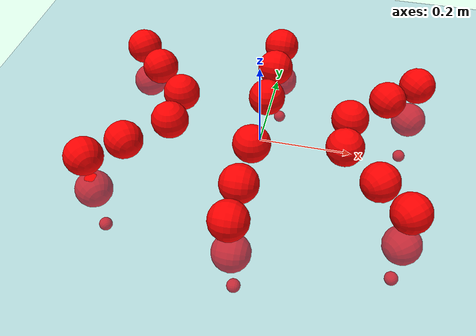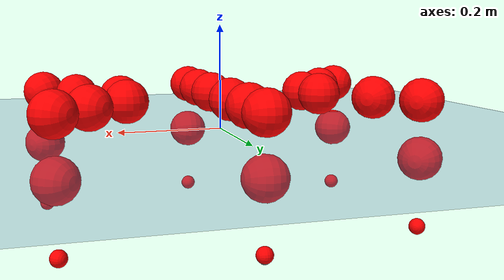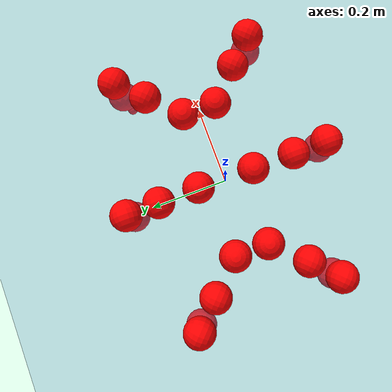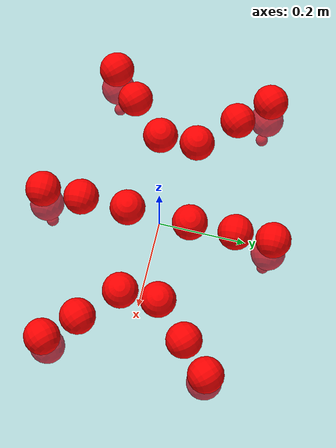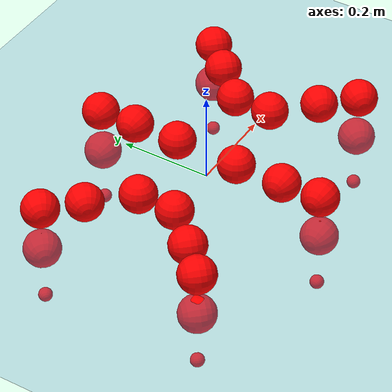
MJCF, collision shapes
<mujoco model="Golem">
  <compiler angle="radian" assetdir="assets" balanceinertia="true" inertiafromgeom="false"/>

  <option timestep="0.005" density="1.2" viscosity="2e-05"/>

  <size nkey="1"/>

  <visual>
    <quality shadowsize="8192"/>
    <map shadowclip="0.5"/>
  </visual>

  <default>
    <default class="/">
      <joint armature="0.01" damping="0.01" frictionloss="0.01"/>
      <geom contype="0" conaffinity="0" group="1" solref="-1000 -80"/>
      <site size="0.01 0.005 0.005" group="5"/>
      <general forcelimited="true" biastype="affine" gainprm="25" biasprm="0 -25 -0.5"/>
      <default class="visual">
        <geom type="mesh" group="2"/>
      </default>
      <default class="collision">
        <geom group="3"/>
      </default>
      <default class="foot">
        <geom size="0.01 0 0" condim="6" group="4" priority="1" solimp="0.015 1 0.01"/>
      </default>
      <default class="reward_collision_sphere">
        <geom group="5" rgba="1 0 0 1"/>
      </default>
    </default>
  </default>

  <asset>
    <texture type="skybox" colorspace="auto" name="//unnamed_texture_0" builtin="gradient" rgb1="0.95 0.95 0.95" rgb2="0.95 0.95 0.95" width="100" height="600"/>
    <texture type="2d" colorspace="auto" name="texplane" builtin="checker" rgb1="0.345 0.575 0.748" rgb2="0.345 0.575 0.748" markrgb="1 1 1" width="512" height="512"/>
    <material name="MatPlane" class="/" texture="texplane" texuniform="true" texrepeat="2 2" specular="0.9"/>
    <mesh name="body" class="/" file="body.stl" scale="0.001 0.001 0.001"/>
    <mesh name="coxa" class="/" file="coxa.stl" scale="0.001 0.001 0.001"/>
    <mesh name="femur" class="/" file="femur.stl" scale="0.001 0.001 0.001"/>
    <mesh name="tibia" class="/" file="tibia.stl" scale="0.001 0.001 0.001"/>
    <mesh name="tarsus" class="/" file="tarsus.stl" scale="0.001 0.001 0.001"/>
  </asset>

  <worldbody>
    <geom name="floor" class="/" size="100 100 0.125" type="plane" group="0" material="MatPlane"/>
    <light name="toplight_shadow" class="/" pos="0 0 5" dir="0.0990148 0.0990148 -0.990148" type="directional" ambient="0.04 0.04 0.04" diffuse="0.55 0.55 0.55" specular="0.12 0.12 0.12"/>
    <light name="toplight_fill" class="/" pos="0 0 5" dir="0.0990148 0.0990148 -0.990148" type="directional" castshadow="false" ambient="0.04 0.04 0.04" diffuse="0.3 0.3 0.3" specular="0.08 0.08 0.08"/>
    <body name="trunk" pos="7.02446e-05 -3.62374e-05 0.000806456" quat="1 0.000109889 -5.91725e-06 3.4363e-05">
      <inertial pos="-0.00018625 0.000615854 -0.00470171" quat="0.999968 -0.00514982 0.00536303 0.00287587" mass="3.81369" diaginertia="0.0253757 0.00358382 0.0103073"/>
      <joint name="//unnamed_joint_0" type="free"/>
      <geom name="//unnamed_geom_1" class="/" pos="0 0 0.064299" quat="1 0 0 0" type="mesh" rgba="0.9 0.9 0.9 1" mesh="body"/>
      <site name="imu" class="/" pos="0.151431 0.00449792 0.104997" size="0.0100676"/>
      <camera name="track" class="/" pos="0 -1.62926 0" quat="0.707107 0.707107 0 0" mode="trackcom"/>
      <camera name="ego_camera" class="/" pos="0.156129 0 0.100467" quat="-0.5 -0.5 0.5 0.5"/>
      <body name="coxa_RR" pos="-0.213199 -0.0670429 0.0631962" quat="0.38268 3.90091e-05 -2.28255e-05 -0.923881">
        <inertial pos="0.000574369 0.000142034 0.00117195" quat="0.999999 0.000937301 -0.00120509 -0.000233584" mass="0.202846" diaginertia="0.025213 0.00357584 0.0101763"/>
        <joint name="coxa_joint_RR" class="/" pos="0 0 0" axis="-0.00113863 0.00492962 -0.999987" range="-3.11959 3.16971" armature="0.0105011" damping="0.00749315" frictionloss="0.0103806"/>
        <geom name="//unnamed_geom_2" class="/" type="mesh" rgba="0.2 0.2 0.2 1" mesh="coxa"/>
        <geom name="//unnamed_geom_3" class="reward_collision_sphere" size="0.0402706" pos="-0.0360298 0 0"/>
        <body name="femur_RR" pos="0.0709922 0.00224171 0.00102428" quat="0.499979 -0.499888 0.499957 0.500176">
          <inertial pos="0.00108112 0.00143965 0.00198706" quat="1 -0.000194039 0.000253604 9.88607e-05" mass="0.204179" diaginertia="0.0250258 0.00354025 0.0104091"/>
          <joint name="femur_joint_RR" class="/" pos="0 0 0" axis="-0.00213899 -0.00220054 -0.999995" range="-3.13772 3.13967" armature="0.00964177" damping="0.00231877" frictionloss="0.0110919"/>
          <geom name="//unnamed_geom_4" class="/" type="mesh" rgba="0.9 0.9 0.9 1" mesh="femur"/>
          <geom name="//unnamed_geom_5" class="reward_collision_sphere" size="0.0402706"/>
          <body name="tibia_RR" pos="5.01851e-06 -0.086628 -0.00181727" quat="0.000251548 1 -0.000129843 -0.000100816">
            <inertial pos="-0.000624407 -0.00192225 0.000252581" quat="0.999996 -0.00135949 0.00115987 0.00198496" mass="0.202152" diaginertia="0.0251494 0.00358269 0.0102587"/>
            <joint name="tibia_joint_RR" class="/" pos="0 0 0" axis="0.000617017 -0.000941888 0.999999" range="-3.14034 3.14002" armature="0.010379" damping="0.0118033" frictionloss="0.0102425"/>
            <geom name="//unnamed_geom_6" class="/" type="mesh" rgba="0.2 0.2 0.2 1" mesh="tibia"/>
            <geom name="//unnamed_geom_7" class="reward_collision_sphere" size="0.0402706"/>
            <body name="tarsus_RR" pos="0.103673 0.000597342 -5.38725e-05" quat="1 8.05318e-05 -0.000284019 -9.52358e-05">
              <inertial pos="0.0730288 0.000973874 -0.000305593" quat="0.498157 0.502371 0.5007 0.498761" mass="0.205562" diaginertia="0.0255233 0.00362521 0.0102951"/>
              <joint name="tarsus_joint_RR" class="/" pos="0 0 0" axis="0.00374883 -0.000619823 0.999993" range="-3.17849 3.1801" armature="0.010249" damping="0" frictionloss="0.00993869"/>
              <geom name="//unnamed_geom_8" class="/" type="mesh" rgba="0.9 0.9 0.9 1" mesh="tarsus"/>
              <geom name="foot_1" class="foot" size="0.0100083" pos="0.134511 0 0" quat="0 -0.707107 0 0.707107"/>
              <geom name="//unnamed_geom_10" class="reward_collision_sphere" size="0.0402706"/>
              <geom name="//unnamed_geom_11" class="reward_collision_sphere" size="0.0151015" pos="0.129107 0 0"/>
              <site name="foot_1" class="foot" pos="0.134511 0 0" quat="0 -0.707107 0 0.707107" size="0.0100676"/>
            </body>
          </body>
        </body>
      </body>
      <body name="coxa_RM" pos="-0.00175864 -0.109358 0.0632219" quat="0.707094 0.000145983 -0.000467149 -0.707119">
        <inertial pos="0.000564086 0.000654001 0.000360663" quat="0.999957 0.00177875 0.00882129 0.00204482" mass="0.207015" diaginertia="0.0250471 0.00358864 0.0103734"/>
        <joint name="coxa_joint_RM" class="/" pos="0 0 0" axis="-0.00436006 -0.000460165 -0.99999" range="-3.13766 3.1432" armature="0.0101213" damping="0.0107986" frictionloss="0.00981741"/>
        <geom name="//unnamed_geom_12" class="/" type="mesh" rgba="0.2 0.2 0.2 1" mesh="coxa"/>
        <geom name="//unnamed_geom_13" class="reward_collision_sphere" size="0.0402706" pos="-0.0360298 0 0"/>
        <body name="femur_RM" pos="0.0716313 -0.000439753 -0.000979651" quat="0.499569 -0.499737 0.500431 0.500263">
          <inertial pos="-0.00167402 0.000533703 -0.00203585" quat="0.999996 -1.96807e-05 -0.000881679 0.0025349" mass="0.206571" diaginertia="0.0248266 0.00358196 0.0101148"/>
          <joint name="femur_joint_RM" class="/" pos="0 0 0" axis="-0.00295946 0.000776292 -0.999995" range="-3.14909 3.16948" armature="0.00949399" damping="0.00578658" frictionloss="0.00942382"/>
          <geom name="//unnamed_geom_14" class="/" type="mesh" rgba="0.9 0.9 0.9 1" mesh="femur"/>
          <geom name="//unnamed_geom_15" class="reward_collision_sphere" size="0.0402706"/>
          <body name="tibia_RM" pos="-0.000165415 -0.0882952 0.00164787" quat="-0.00040426 1 -0.000115231 -2.36166e-05">
            <inertial pos="0.000572243 -0.00069043 -0.000455118" quat="1 9.41451e-05 3.95972e-05 -9.24438e-05" mass="0.2026" diaginertia="0.0246652 0.00351683 0.010171"/>
            <joint name="tibia_joint_RM" class="/" pos="0 0 0" axis="-0.0069038 -0.000808234 0.999976" range="-3.15936 3.11679" armature="0.0099349" damping="0" frictionloss="0.00958148"/>
            <geom name="//unnamed_geom_16" class="/" type="mesh" rgba="0.2 0.2 0.2 1" mesh="tibia"/>
            <geom name="//unnamed_geom_17" class="reward_collision_sphere" size="0.0402706"/>
            <body name="tarsus_RM" pos="0.104008 0.00130758 -0.00114047" quat="1 -0.000169557 -5.05506e-05 -5.15194e-05">
              <inertial pos="0.0728695 -1.11346e-05 0.000181257" quat="0.499828 0.49981 0.498875 0.501484" mass="0.201573" diaginertia="0.0245876 0.00354376 0.00987623"/>
              <joint name="tarsus_joint_RM" class="/" pos="0 0 0" axis="-0.00337627 0.00149669 0.999993" range="-3.16262 3.10326" armature="0.0101027" damping="0.00162685" frictionloss="0.0103013"/>
              <geom name="//unnamed_geom_18" class="/" type="mesh" rgba="0.9 0.9 0.9 1" mesh="tarsus"/>
              <geom name="foot_2" class="foot" size="0.00977666" pos="0.134511 0 0" quat="0 -0.707107 0 0.707107"/>
              <geom name="//unnamed_geom_20" class="reward_collision_sphere" size="0.0402706"/>
              <geom name="//unnamed_geom_21" class="reward_collision_sphere" size="0.0151015" pos="0.129107 0 0"/>
              <site name="foot_2" class="foot" pos="0.134511 0 0" quat="0 -0.707107 0 0.707107" size="0.0100676"/>
            </body>
          </body>
        </body>
      </body>
      <body name="coxa_RF" pos="0.212403 -0.0683996 0.0631521" quat="0.923727 -0.000216695 9.2886e-05 -0.383052">
        <inertial pos="-0.000910711 -0.00221228 0.000317134" quat="0.999993 -0.00209558 -0.00266321 -0.00124539" mass="0.204095" diaginertia="0.0250742 0.00356086 0.0101478"/>
        <joint name="coxa_joint_RF" class="/" pos="0 0 0" axis="-0.000225783 -0.000618997 -1" stiffness="7.65871e-05" range="-3.13801 3.1384" armature="0.00978992" damping="0" frictionloss="0.0101226"/>
        <geom name="//unnamed_geom_22" class="/" type="mesh" rgba="0.2 0.2 0.2 1" mesh="coxa"/>
        <geom name="//unnamed_geom_23" class="reward_collision_sphere" size="0.0402706" pos="-0.0360298 0 0"/>
        <body name="femur_RF" pos="0.0725971 0.000644204 -0.0015494" quat="0.500057 -0.499972 0.500091 0.499879">
          <inertial pos="0.000596025 -0.000116766 0.000742548" quat="0.999995 8.91393e-05 0.00130305 -0.00283956" mass="0.201485" diaginertia="0.0250544 0.0034665 0.010145"/>
          <joint name="femur_joint_RF" class="/" pos="0 0 0" axis="-0.00166265 0.00107813 -0.999998" range="-3.10873 3.13363" armature="0.0101919" damping="0.00516121" frictionloss="0.0099287"/>
          <geom name="//unnamed_geom_24" class="/" type="mesh" rgba="0.9 0.9 0.9 1" mesh="femur"/>
          <geom name="//unnamed_geom_25" class="reward_collision_sphere" size="0.0402706"/>
          <body name="tibia_RF" pos="-0.00124526 -0.0880766 -0.00127592" quat="-1.60239e-05 1 4.25722e-05 1.23742e-05">
            <inertial pos="0.000182755 0.000975223 2.81164e-05" quat="0.999957 -0.00154844 -0.00896009 -0.00173177" mass="0.20998" diaginertia="0.0248899 0.00361275 0.0102945"/>
            <joint name="tibia_joint_RF" class="/" pos="0 0 0" axis="-3.45901e-05 -0.000172726 1" range="-3.1388 3.1402" armature="0.0100116" damping="0.00144027" frictionloss="0.00984129"/>
            <geom name="//unnamed_geom_26" class="/" type="mesh" rgba="0.2 0.2 0.2 1" mesh="tibia"/>
            <geom name="//unnamed_geom_27" class="reward_collision_sphere" size="0.0402706"/>
            <body name="tarsus_RF" pos="0.106437 1.32703e-05 -0.00179455" quat="1 -7.11891e-05 0.000299011 4.87761e-05">
              <inertial pos="0.0710194 -0.00123244 -0.00103113" quat="0.498974 0.503671 0.498526 0.498811" mass="0.199452" diaginertia="0.0250425 0.00355287 0.0101268"/>
              <joint name="tarsus_joint_RF" class="/" pos="0 0 0" axis="0.00425011 -0.00333539 0.999985" range="-3.14847 3.13797" armature="0.0101059" damping="0.0131722" frictionloss="0.0104396"/>
              <geom name="//unnamed_geom_28" class="/" type="mesh" rgba="0.9 0.9 0.9 1" mesh="tarsus"/>
              <geom name="foot_3" class="foot" size="0.0101985" pos="0.134511 0 0" quat="0 -0.707107 0 0.707107"/>
              <geom name="//unnamed_geom_30" class="reward_collision_sphere" size="0.0402706"/>
              <geom name="//unnamed_geom_31" class="reward_collision_sphere" size="0.0151015" pos="0.129107 0 0"/>
              <site name="foot_3" class="foot" pos="0.134511 0 0" quat="0 -0.707107 0 0.707107" size="0.0100676"/>
            </body>
          </body>
        </body>
      </body>
      <body name="coxa_LR" pos="-0.213349 0.0698131 0.0664525" quat="0.382574 0.000334758 -0.000490954 0.923925">
        <inertial pos="2.0505e-05 -0.000143515 0.00187123" quat="0.999997 -0.00221574 0.00102452 0.000901028" mass="0.203298" diaginertia="0.0247499 0.00352891 0.0099049"/>
        <joint name="coxa_joint_LR" class="/" pos="0 0 0" axis="-0.00135111 -0.000663916 -0.999999" range="-3.12075 3.12297" armature="0.0105393" damping="0" frictionloss="0.00922929"/>
        <geom name="//unnamed_geom_32" class="/" type="mesh" rgba="0.2 0.2 0.2 1" mesh="coxa"/>
        <geom name="//unnamed_geom_33" class="reward_collision_sphere" size="0.0402706" pos="-0.0360298 0 0"/>
        <body name="femur_LR" pos="0.0732472 -0.00222132 -0.00118057" quat="0.499899 -0.499781 0.499959 0.500361">
          <inertial pos="0.00107545 0.000769551 5.52022e-05" quat="0.999989 0.00301101 -0.00261474 -0.00258766" mass="0.19944" diaginertia="0.0249805 0.00360805 0.0102083"/>
          <joint name="femur_joint_LR" class="/" pos="0 0 0" axis="0.00500173 -0.00366391 0.999981" range="-3.17979 3.10935" armature="0.00926199" damping="0.00547598" frictionloss="0.00990088"/>
          <geom name="//unnamed_geom_34" class="/" type="mesh" rgba="0.9 0.9 0.9 1" mesh="femur"/>
          <geom name="//unnamed_geom_35" class="reward_collision_sphere" size="0.0402706"/>
          <body name="tibia_LR" pos="0.000161535 -0.0901311 -0.00139519" quat="-0.000219735 1 -0.000132741 0.000301119">
            <inertial pos="-0.00104395 -0.0010545 -0.000422371" quat="0.999999 -0.00106828 -0.00022013 -0.000202065" mass="0.206139" diaginertia="0.0249516 0.00363993 0.0103078"/>
            <joint name="tibia_joint_LR" class="/" pos="0 0 0" axis="-0.00622966 0.00624826 -0.999961" range="-3.13077 3.1201" armature="0.0105373" damping="0" frictionloss="0.00998663"/>
            <geom name="//unnamed_geom_36" class="/" type="mesh" rgba="0.2 0.2 0.2 1" mesh="tibia"/>
            <geom name="//unnamed_geom_37" class="reward_collision_sphere" size="0.0402706"/>
            <body name="tarsus_LR" pos="0.107178 0.00126481 0.000615486" quat="1 0.000480903 -7.17229e-05 0.000649266">
              <inertial pos="0.0716168 -0.000261827 0.00109117" quat="0.500402 0.499645 0.499857 0.500096" mass="0.203322" diaginertia="0.0248538 0.00350233 0.0100854"/>
              <joint name="tarsus_joint_LR" class="/" pos="0 0 0" axis="-0.00149038 0.0033934 -0.999993" range="-3.13732 3.14442" armature="0.00956258" damping="0.029024" frictionloss="0.010704"/>
              <geom name="//unnamed_geom_38" class="/" type="mesh" rgba="0.9 0.9 0.9 1" mesh="tarsus"/>
              <geom name="foot_4" class="foot" size="0.0101208" pos="0.134511 0 0" quat="0.707107 0 -0.707107 0"/>
              <geom name="//unnamed_geom_40" class="reward_collision_sphere" size="0.0402706"/>
              <geom name="//unnamed_geom_41" class="reward_collision_sphere" size="0.0151015" pos="0.129107 0 0"/>
              <site name="foot_4" class="foot" pos="0.134511 0 0" quat="0.707107 0 -0.707107 0" size="0.0100676"/>
            </body>
          </body>
        </body>
      </body>
      <body name="coxa_LM" pos="0.000360052 0.106577 0.0642541" quat="0.707118 -1.04402e-05 5.14271e-05 0.707096">
        <inertial pos="0.00153138 -0.000123135 -0.000283534" quat="0.999989 -0.00184634 0.00320723 0.00297437" mass="0.201016" diaginertia="0.0252898 0.00353848 0.0101561"/>
        <joint name="coxa_joint_LM" class="/" pos="0 0 0" axis="-0.00113993 0.00655792 -0.999978" range="-3.12806 3.14334" armature="0.00988584" damping="0" frictionloss="0.0102978"/>
        <geom name="//unnamed_geom_42" class="/" type="mesh" rgba="0.2 0.2 0.2 1" mesh="coxa"/>
        <geom name="//unnamed_geom_43" class="reward_collision_sphere" size="0.0402706" pos="-0.0360298 0 0"/>
        <body name="femur_LM" pos="0.0680237 0.00101137 0.000887692" quat="0.499931 -0.49984 0.500048 0.500181">
          <inertial pos="-0.000452962 0.000276741 0.000710631" quat="0.999991 -0.000388707 0.000415458 0.00417688" mass="0.206441" diaginertia="0.0243112 0.00356558 0.0103679"/>
          <joint name="femur_joint_LM" class="/" pos="0 0 0" axis="0.011982 0.00417677 0.999919" stiffness="9.77986e-05" range="-3.10864 3.15808" armature="0.0104155" damping="0" frictionloss="0.0100903"/>
          <geom name="//unnamed_geom_44" class="/" type="mesh" rgba="0.9 0.9 0.9 1" mesh="femur"/>
          <geom name="//unnamed_geom_45" class="reward_collision_sphere" size="0.0402706"/>
          <body name="tibia_LM" pos="0.00053595 -0.0854659 0.00143513" quat="-0.000127445 1 1.07193e-05 0.000146835">
            <inertial pos="-0.00158832 4.60136e-05 6.92395e-05" quat="0.999991 0.00383254 -0.000250546 0.00181002" mass="0.204912" diaginertia="0.0250313 0.00360061 0.0101998"/>
            <joint name="tibia_joint_LM" class="/" pos="0 0 0" axis="0.00140043 -6.37711e-05 -0.999999" range="-3.15388 3.15828" armature="0.0100356" damping="0" frictionloss="0.00897306"/>
            <geom name="//unnamed_geom_46" class="/" type="mesh" rgba="0.2 0.2 0.2 1" mesh="tibia"/>
            <geom name="//unnamed_geom_47" class="reward_collision_sphere" size="0.0402706"/>
            <body name="tarsus_LM" pos="0.107191 -0.00088894 0.000491311" quat="1 -0.000240731 6.86214e-05 0.000439886">
              <inertial pos="0.0713544 2.85724e-05 0.000374169" quat="0.497525 0.50047 0.498308 0.503674" mass="0.202539" diaginertia="0.0249866 0.00358686 0.0102548"/>
              <joint name="tarsus_joint_LM" class="/" pos="0 0 0" axis="0.00342758 -0.00310626 -0.999989" stiffness="0.00213712" range="-3.13216 3.13933" armature="0.00964792" damping="0.00279277" frictionloss="0.0103311"/>
              <geom name="//unnamed_geom_48" class="/" type="mesh" rgba="0.9 0.9 0.9 1" mesh="tarsus"/>
              <geom name="foot_5" class="foot" size="0.0109985" pos="0.134511 0 0" quat="0.707107 0 -0.707107 0"/>
              <geom name="//unnamed_geom_50" class="reward_collision_sphere" size="0.0402706"/>
              <geom name="//unnamed_geom_51" class="reward_collision_sphere" size="0.0151015" pos="0.129107 0 0"/>
              <site name="foot_5" class="foot" pos="0.134511 0 0" quat="0.707107 0 -0.707107 0" size="0.0100676"/>
            </body>
          </body>
        </body>
      </body>
      <body name="coxa_LF" pos="0.213493 0.067979 0.063132" quat="0.923821 0.000172558 0.000234335 0.382824">
        <inertial pos="0.000226986 -0.00183297 0.000446044" quat="0.99998 -0.00242608 -0.00412814 0.00407296" mass="0.207615" diaginertia="0.025673 0.00368924 0.0104953"/>
        <joint name="coxa_joint_LF" class="/" pos="0 0 0" axis="-0.00295144 0.00587511 -0.999978" range="-3.13412 3.14205" armature="0.00965676" damping="0.00111034" frictionloss="0.00964804"/>
        <geom name="//unnamed_geom_52" class="/" type="mesh" rgba="0.2 0.2 0.2 1" mesh="coxa"/>
        <geom name="//unnamed_geom_53" class="reward_collision_sphere" size="0.0402706" pos="-0.0360298 0 0"/>
        <body name="femur_LF" pos="0.0696971 0.000573235 0.000641313" quat="0.500011 -0.499974 0.500012 0.500003">
          <inertial pos="-0.0003481 -0.000397718 -0.00119217" quat="0.999998 -0.00191577 9.3016e-05 7.24516e-05" mass="0.202554" diaginertia="0.0245231 0.00355406 0.0101137"/>
          <joint name="femur_joint_LF" class="/" pos="0 0 0" axis="0.00066439 -0.00137218 0.999999" range="-3.13664 3.13825" armature="0.0100142" damping="6.70678e-05" frictionloss="0.0100284"/>
          <geom name="//unnamed_geom_54" class="/" type="mesh" rgba="0.9 0.9 0.9 1" mesh="femur"/>
          <geom name="//unnamed_geom_55" class="reward_collision_sphere" size="0.0402706"/>
          <body name="tibia_LF" pos="7.1678e-05 -0.0879297 -0.000139226" quat="-2.58621e-05 1 0.000105018 -6.8555e-05">
            <inertial pos="0.00158573 0.00177798 0.00205611" quat="0.99999 -0.00233164 0.00125633 0.00362508" mass="0.203646" diaginertia="0.0250284 0.00356402 0.0104677"/>
            <joint name="tibia_joint_LF" class="/" pos="0 0 0" axis="-0.000922776 -0.00800704 -0.999968" range="-3.14067 3.10728" armature="0.0101041" damping="0" frictionloss="0.0102131"/>
            <geom name="//unnamed_geom_56" class="/" type="mesh" rgba="0.2 0.2 0.2 1" mesh="tibia"/>
            <geom name="//unnamed_geom_57" class="reward_collision_sphere" size="0.0402706"/>
            <body name="tarsus_LF" pos="0.106968 0.000240166 -0.000729982" quat="1 2.32102e-05 -4.34046e-05 4.97385e-07">
              <inertial pos="0.0727499 0.000555036 0.00152908" quat="0.500521 0.498009 0.503081 0.498373" mass="0.203051" diaginertia="0.0253249 0.00358895 0.0104739"/>
              <joint name="tarsus_joint_LF" class="/" pos="0 0 0" axis="-0.00132213 -0.00094556 -0.999999" range="-3.15822 3.10386" armature="0.00969755" damping="0.0127992" frictionloss="0.00974166"/>
              <geom name="//unnamed_geom_58" class="/" type="mesh" rgba="0.9 0.9 0.9 1" mesh="tarsus"/>
              <geom name="foot_6" class="foot" size="0.00997317" pos="0.134511 0 0" quat="0.707107 0 -0.707107 0"/>
              <geom name="//unnamed_geom_60" class="reward_collision_sphere" size="0.0402706"/>
              <geom name="//unnamed_geom_61" class="reward_collision_sphere" size="0.0151015" pos="0.129107 0 0"/>
              <site name="foot_6" class="foot" pos="0.134511 0 0" quat="0.707107 0 -0.707107 0" size="0.0100676"/>
            </body>
          </body>
        </body>
      </body>
    </body>
  </worldbody>

  <contact>
    <pair class="/" geom1="floor" geom2="foot_1" name="//unnamed_contact_0"/>
    <pair class="/" geom1="floor" geom2="foot_2" name="//unnamed_contact_1"/>
    <pair class="/" geom1="floor" geom2="foot_3" name="//unnamed_contact_2"/>
    <pair class="/" geom1="floor" geom2="foot_4" name="//unnamed_contact_3"/>
    <pair class="/" geom1="floor" geom2="foot_5" name="//unnamed_contact_4"/>
    <pair class="/" geom1="floor" geom2="foot_6" name="//unnamed_contact_5"/>
  </contact>

  <actuator>
    <general name="coxa_joint_RR" class="/" joint="coxa_joint_RR" forcerange="-7.42516 7.42516" gainprm="25.0123" biasprm="0 -25.0123 -0.513911"/>
    <general name="femur_joint_RR" class="/" joint="femur_joint_RR" forcerange="-7.27559 7.27559" gainprm="25.0123" biasprm="0 -25.0123 -0.513911"/>
    <general name="tibia_joint_RR" class="/" joint="tibia_joint_RR" forcerange="-7.37867 7.37867" gainprm="25.0123" biasprm="0 -25.0123 -0.513911"/>
    <general name="tarsus_joint_RR" class="/" joint="tarsus_joint_RR" forcerange="-7.48361 7.48361" gainprm="25.0123" biasprm="0 -25.0123 -0.513911"/>
    <general name="coxa_joint_RM" class="/" joint="coxa_joint_RM" forcerange="-7.22646 7.22646" gainprm="25.0123" biasprm="0 -25.0123 -0.513911"/>
    <general name="femur_joint_RM" class="/" joint="femur_joint_RM" forcerange="-7.27398 7.27398" gainprm="25.0123" biasprm="0 -25.0123 -0.513911"/>
    <general name="tibia_joint_RM" class="/" joint="tibia_joint_RM" forcerange="-7.39123 7.39123" gainprm="25.0123" biasprm="0 -25.0123 -0.513911"/>
    <general name="tarsus_joint_RM" class="/" joint="tarsus_joint_RM" forcerange="-7.24658 7.24658" gainprm="25.0123" biasprm="0 -25.0123 -0.513911"/>
    <general name="coxa_joint_RF" class="/" joint="coxa_joint_RF" forcerange="-7.24469 7.24469" gainprm="25.0123" biasprm="0 -25.0123 -0.513911"/>
    <general name="femur_joint_RF" class="/" joint="femur_joint_RF" forcerange="-7.34563 7.34563" gainprm="25.0123" biasprm="0 -25.0123 -0.513911"/>
    <general name="tibia_joint_RF" class="/" joint="tibia_joint_RF" forcerange="-7.36113 7.36113" gainprm="25.0123" biasprm="0 -25.0123 -0.513911"/>
    <general name="tarsus_joint_RF" class="/" joint="tarsus_joint_RF" forcerange="-7.46977 7.46977" gainprm="25.0123" biasprm="0 -25.0123 -0.513911"/>
    <general name="coxa_joint_LR" class="/" joint="coxa_joint_LR" forcerange="-7.60356 7.60356" gainprm="25.0123" biasprm="0 -25.0123 -0.513911"/>
    <general name="femur_joint_LR" class="/" joint="femur_joint_LR" forcerange="-7.07444 7.07444" gainprm="25.0123" biasprm="0 -25.0123 -0.513911"/>
    <general name="tibia_joint_LR" class="/" joint="tibia_joint_LR" forcerange="-7.4364 7.4364" gainprm="25.0123" biasprm="0 -25.0123 -0.513911"/>
    <general name="tarsus_joint_LR" class="/" joint="tarsus_joint_LR" forcerange="-7.37335 7.37335" gainprm="25.0123" biasprm="0 -25.0123 -0.513911"/>
    <general name="coxa_joint_LM" class="/" joint="coxa_joint_LM" forcerange="-7.43877 7.43877" gainprm="25.0123" biasprm="0 -25.0123 -0.513911"/>
    <general name="femur_joint_LM" class="/" joint="femur_joint_LM" forcerange="-7.59898 7.59898" gainprm="25.0123" biasprm="0 -25.0123 -0.513911"/>
    <general name="tibia_joint_LM" class="/" joint="tibia_joint_LM" forcerange="-7.35627 7.35627" gainprm="25.0123" biasprm="0 -25.0123 -0.513911"/>
    <general name="tarsus_joint_LM" class="/" joint="tarsus_joint_LM" forcerange="-7.1929 7.1929" gainprm="25.0123" biasprm="0 -25.0123 -0.513911"/>
    <general name="coxa_joint_LF" class="/" joint="coxa_joint_LF" forcerange="-7.57072 7.57072" gainprm="25.0123" biasprm="0 -25.0123 -0.513911"/>
    <general name="femur_joint_LF" class="/" joint="femur_joint_LF" forcerange="-7.40415 7.40415" gainprm="25.0123" biasprm="0 -25.0123 -0.513911"/>
    <general name="tibia_joint_LF" class="/" joint="tibia_joint_LF" forcerange="-7.37434 7.37434" gainprm="25.0123" biasprm="0 -25.0123 -0.513911"/>
    <general name="tarsus_joint_LF" class="/" joint="tarsus_joint_LF" forcerange="-6.75669 6.75669" gainprm="25.0123" biasprm="0 -25.0123 -0.513911"/>
  </actuator>

  <sensor>
    <gyro site="imu" name="imu_angular_velocity"/>
    <velocimeter site="imu" name="imu_linear_velocity"/>
    <framelinvel objtype="site" objname="foot_1" name="foot_1_global_linear_velocity"/>
    <framelinvel objtype="site" objname="foot_2" name="foot_2_global_linear_velocity"/>
    <framelinvel objtype="site" objname="foot_3" name="foot_3_global_linear_velocity"/>
    <framelinvel objtype="site" objname="foot_4" name="foot_4_global_linear_velocity"/>
    <framelinvel objtype="site" objname="foot_5" name="foot_5_global_linear_velocity"/>
    <framelinvel objtype="site" objname="foot_6" name="foot_6_global_linear_velocity"/>
  </sensor>

  <keyframe>
    <key name="home" qpos="0 0 0.1457 1 0 0 0 0 0 0 0 0 0 0 0 0 0 0 0 0 0 0 0 0 0 0 0 0 0 0 0"/>
  </keyframe>
</mujoco>
